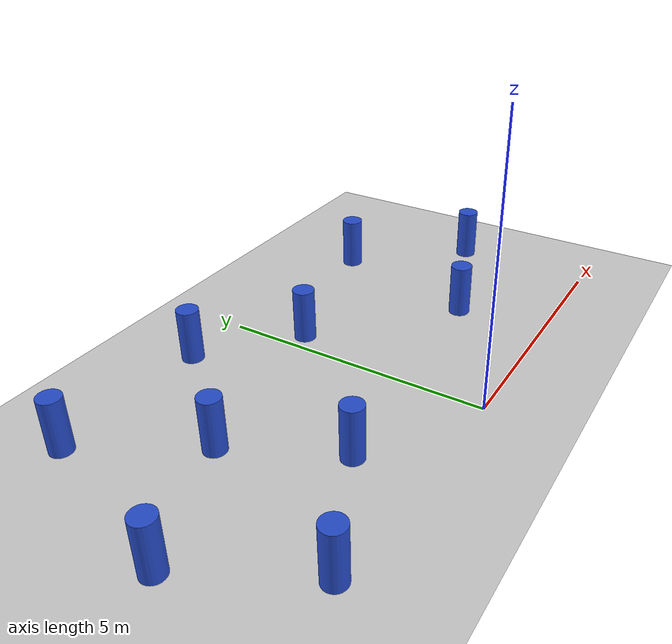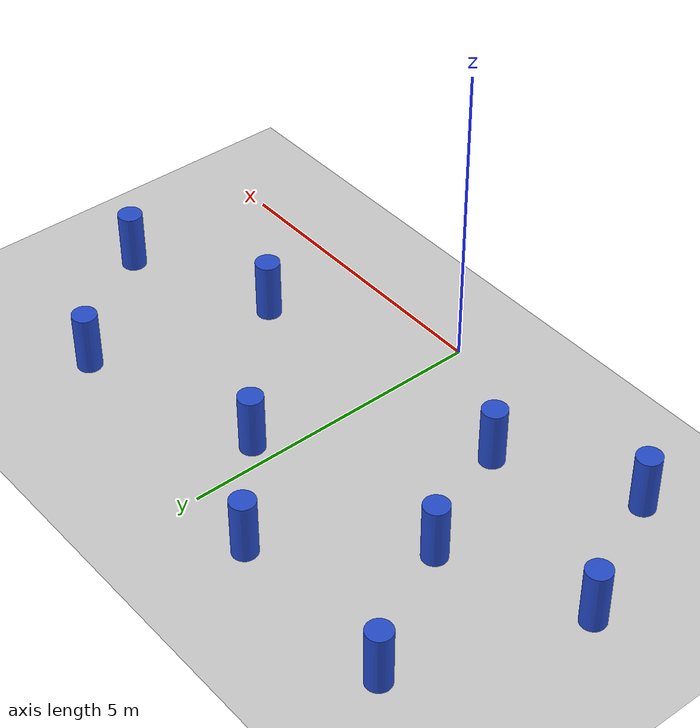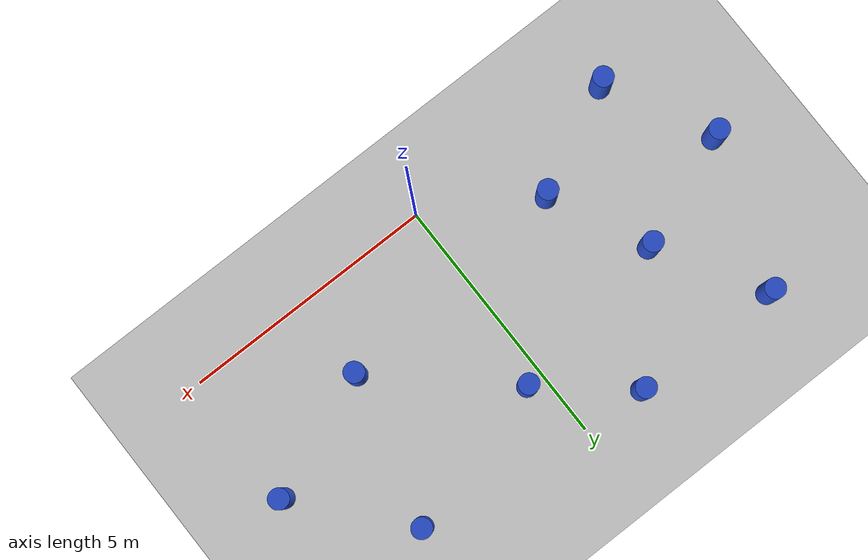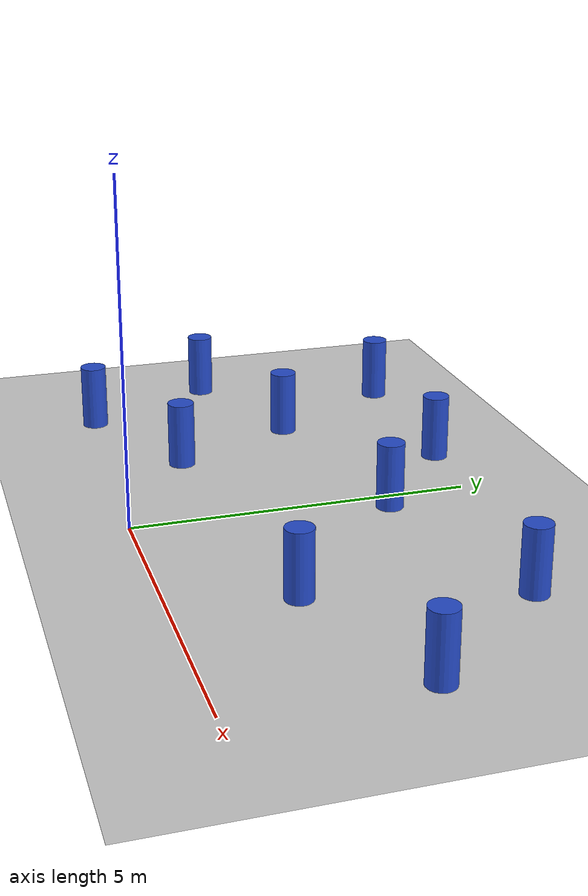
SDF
<sdf version="1.7">
 <world name="default">
  <model name="ground_plane">
   <static>1</static>
   <link name="link">
    <collision name="collision">
     <geometry><plane><normal>0 0 1</normal><size>100 100</size></plane></geometry>
     <surface>
      <contact><collide_bitmask>65535</collide_bitmask></contact>
      <friction><ode><mu>100</mu><mu2>50</mu2></ode></friction>
     </surface>
    </collision>
    <visual name="visual">
     <cast_shadows>0</cast_shadows>
     <geometry><plane><normal>0 0 1</normal><size>100 100</size></plane></geometry>
     <material>
      <script><uri>file://media/materials/scripts/gazebo.material</uri><name>Gazebo/Grey</name></script>
     </material>
    </visual>
   </link>
  </model>
  <model name="20x100cm_cylinder">
   <link name="link">
    <inertial>
     <mass>1</mass>
     <inertia><ixx>0.145833</ixx><ixy>0</ixy><ixz>0</ixz><iyy>0.145833</iyy><iyz>0</iyz><izz>0.125</izz></inertia>
    </inertial>
    <visual name="visual">
     <geometry><cylinder><radius>0.2</radius><length>1</length></cylinder></geometry>
     <material>
      <script><name>Gazebo/Blue</name><uri>file://media/materials/scripts/gazebo.material</uri></script>
      <shader type="pixel"><normal_map>__default__</normal_map></shader>
      <ambient>0.3 0.3 0.3 1</ambient>
      <diffuse>0.7 0.7 0.7 1</diffuse>
      <specular>0.01 0.01 0.01 1</specular>
      <emissive>0 0 0 1</emissive>
     </material>
    </visual>
    <collision name="collision">
     <geometry><cylinder><radius>0.2</radius><length>1</length></cylinder></geometry>
     <surface>
      <friction>
       <ode><mu>1</mu><mu2>1</mu2><fdir1>0 0 0</fdir1><slip1>0</slip1><slip2>0</slip2></ode>
       <torsional>
        <coefficient>1</coefficient>
        <patch_radius>0</patch_radius>
        <surface_radius>0</surface_radius>
        <use_patch_radius>1</use_patch_radius>
        <ode><slip>0</slip></ode>
       </torsional>
      </friction>
      <bounce><restitution_coefficient>0</restitution_coefficient><threshold>1e+06</threshold></bounce>
      <contact>
       <collide_without_contact>0</collide_without_contact>
       <collide_without_contact_bitmask>1</collide_without_contact_bitmask>
       <collide_bitmask>1</collide_bitmask>
       <ode>
        <soft_cfm>0</soft_cfm>
        <soft_erp>0.2</soft_erp>
        <kp>1e+13</kp>
        <kd>1</kd>
        <max_vel>0.01</max_vel>
        <min_depth>0</min_depth>
       </ode>
       <bullet>
        <split_impulse>1</split_impulse>
        <split_impulse_penetration_threshold>-0.01</split_impulse_penetration_threshold>
        <soft_cfm>0</soft_cfm>
        <soft_erp>0.2</soft_erp>
        <kp>1e+13</kp>
        <kd>1</kd>
       </bullet>
      </contact>
     </surface>
    </collision>
   </link>
   <static>0</static>
   <pose>-2.97051 3.11819 0.5 0 -0 0</pose>
  </model>
  <model name="20x100cm_cylinder_clone">
   <link name="link">
    <inertial>
     <mass>1</mass>
     <inertia><ixx>0.145833</ixx><ixy>0</ixy><ixz>0</ixz><iyy>0.145833</iyy><iyz>0</iyz><izz>0.125</izz></inertia>
    </inertial>
    <visual name="visual">
     <geometry><cylinder><radius>0.2</radius><length>1</length></cylinder></geometry>
     <material>
      <script><name>Gazebo/Blue</name><uri>file://media/materials/scripts/gazebo.material</uri></script>
      <shader type="pixel"><normal_map>__default__</normal_map></shader>
      <ambient>0.3 0.3 0.3 1</ambient>
      <diffuse>0.7 0.7 0.7 1</diffuse>
      <specular>0.01 0.01 0.01 1</specular>
      <emissive>0 0 0 1</emissive>
     </material>
    </visual>
    <collision name="collision">
     <geometry><cylinder><radius>0.2</radius><length>1</length></cylinder></geometry>
     <surface>
      <friction>
       <ode><mu>1</mu><mu2>1</mu2><fdir1>0 0 0</fdir1><slip1>0</slip1><slip2>0</slip2></ode>
       <torsional>
        <coefficient>1</coefficient>
        <patch_radius>0</patch_radius>
        <surface_radius>0</surface_radius>
        <use_patch_radius>1</use_patch_radius>
        <ode><slip>0</slip></ode>
       </torsional>
      </friction>
      <bounce><restitution_coefficient>0</restitution_coefficient><threshold>1e+06</threshold></bounce>
      <contact>
       <collide_without_contact>0</collide_without_contact>
       <collide_without_contact_bitmask>1</collide_without_contact_bitmask>
       <collide_bitmask>1</collide_bitmask>
       <ode>
        <soft_cfm>0</soft_cfm>
        <soft_erp>0.2</soft_erp>
        <kp>1e+13</kp>
        <kd>1</kd>
        <max_vel>0.01</max_vel>
        <min_depth>0</min_depth>
       </ode>
       <bullet>
        <split_impulse>1</split_impulse>
        <split_impulse_penetration_threshold>-0.01</split_impulse_penetration_threshold>
        <soft_cfm>0</soft_cfm>
        <soft_erp>0.2</soft_erp>
        <kp>1e+13</kp>
        <kd>1</kd>
       </bullet>
      </contact>
     </surface>
    </collision>
   </link>
   <static>0</static>
   <pose>2.65411 1.66507 0.5 0 -0 0</pose>
  </model>
  <model name="20x100cm_cylinder_clone_2">
   <link name="link">
    <inertial>
     <mass>1</mass>
     <inertia><ixx>0.145833</ixx><ixy>0</ixy><ixz>0</ixz><iyy>0.145833</iyy><iyz>0</iyz><izz>0.125</izz></inertia>
    </inertial>
    <visual name="visual">
     <geometry><cylinder><radius>0.2</radius><length>1</length></cylinder></geometry>
     <material>
      <script><name>Gazebo/Blue</name><uri>file://media/materials/scripts/gazebo.material</uri></script>
      <shader type="pixel"><normal_map>__default__</normal_map></shader>
      <ambient>0.3 0.3 0.3 1</ambient>
      <diffuse>0.7 0.7 0.7 1</diffuse>
      <specular>0.01 0.01 0.01 1</specular>
      <emissive>0 0 0 1</emissive>
     </material>
    </visual>
    <collision name="collision">
     <geometry><cylinder><radius>0.2</radius><length>1</length></cylinder></geometry>
     <surface>
      <friction>
       <ode><mu>1</mu><mu2>1</mu2><fdir1>0 0 0</fdir1><slip1>0</slip1><slip2>0</slip2></ode>
       <torsional>
        <coefficient>1</coefficient>
        <patch_radius>0</patch_radius>
        <surface_radius>0</surface_radius>
        <use_patch_radius>1</use_patch_radius>
        <ode><slip>0</slip></ode>
       </torsional>
      </friction>
      <bounce><restitution_coefficient>0</restitution_coefficient><threshold>1e+06</threshold></bounce>
      <contact>
       <collide_without_contact>0</collide_without_contact>
       <collide_without_contact_bitmask>1</collide_without_contact_bitmask>
       <collide_bitmask>1</collide_bitmask>
       <ode>
        <soft_cfm>0</soft_cfm>
        <soft_erp>0.2</soft_erp>
        <kp>1e+13</kp>
        <kd>1</kd>
        <max_vel>0.01</max_vel>
        <min_depth>0</min_depth>
       </ode>
       <bullet>
        <split_impulse>1</split_impulse>
        <split_impulse_penetration_threshold>-0.01</split_impulse_penetration_threshold>
        <soft_cfm>0</soft_cfm>
        <soft_erp>0.2</soft_erp>
        <kp>1e+13</kp>
        <kd>1</kd>
       </bullet>
      </contact>
     </surface>
    </collision>
   </link>
   <static>0</static>
   <pose>-4.13406 0.231543 0.5 0 -0 0</pose>
  </model>
  <model name="20x100cm_cylinder_clone_4">
   <link name="link">
    <inertial>
     <mass>1</mass>
     <inertia><ixx>0.145833</ixx><ixy>0</ixy><ixz>0</ixz><iyy>0.145833</iyy><iyz>0</iyz><izz>0.125</izz></inertia>
    </inertial>
    <visual name="visual">
     <geometry><cylinder><radius>0.2</radius><length>1</length></cylinder></geometry>
     <material>
      <script><name>Gazebo/Blue</name><uri>file://media/materials/scripts/gazebo.material</uri></script>
      <shader type="pixel"><normal_map>__default__</normal_map></shader>
      <ambient>0.3 0.3 0.3 1</ambient>
      <diffuse>0.7 0.7 0.7 1</diffuse>
      <specular>0.01 0.01 0.01 1</specular>
      <emissive>0 0 0 1</emissive>
     </material>
    </visual>
    <collision name="collision">
     <geometry><cylinder><radius>0.2</radius><length>1</length></cylinder></geometry>
     <surface>
      <friction>
       <ode><mu>1</mu><mu2>1</mu2><fdir1>0 0 0</fdir1><slip1>0</slip1><slip2>0</slip2></ode>
       <torsional>
        <coefficient>1</coefficient>
        <patch_radius>0</patch_radius>
        <surface_radius>0</surface_radius>
        <use_patch_radius>1</use_patch_radius>
        <ode><slip>0</slip></ode>
       </torsional>
      </friction>
      <bounce><restitution_coefficient>0</restitution_coefficient><threshold>1e+06</threshold></bounce>
      <contact>
       <collide_without_contact>0</collide_without_contact>
       <collide_without_contact_bitmask>1</collide_without_contact_bitmask>
       <collide_bitmask>1</collide_bitmask>
       <ode>
        <soft_cfm>0</soft_cfm>
        <soft_erp>0.2</soft_erp>
        <kp>1e+13</kp>
        <kd>1</kd>
        <max_vel>0.01</max_vel>
        <min_depth>0</min_depth>
       </ode>
       <bullet>
        <split_impulse>1</split_impulse>
        <split_impulse_penetration_threshold>-0.01</split_impulse_penetration_threshold>
        <soft_cfm>0</soft_cfm>
        <soft_erp>0.2</soft_erp>
        <kp>1e+13</kp>
        <kd>1</kd>
       </bullet>
      </contact>
     </surface>
    </collision>
   </link>
   <static>0</static>
   <pose>0.34899 3.73902 0.5 0 -0 0</pose>
  </model>
  <model name="20x100cm_cylinder_clone_7">
   <link name="link">
    <inertial>
     <mass>1</mass>
     <inertia><ixx>0.145833</ixx><ixy>0</ixy><ixz>0</ixz><iyy>0.145833</iyy><iyz>0</iyz><izz>0.125</izz></inertia>
    </inertial>
    <visual name="visual">
     <geometry><cylinder><radius>0.2</radius><length>1</length></cylinder></geometry>
     <material>
      <script><name>Gazebo/Blue</name><uri>file://media/materials/scripts/gazebo.material</uri></script>
      <shader type="pixel"><normal_map>__default__</normal_map></shader>
      <ambient>0.3 0.3 0.3 1</ambient>
      <diffuse>0.7 0.7 0.7 1</diffuse>
      <specular>0.01 0.01 0.01 1</specular>
      <emissive>0 0 0 1</emissive>
     </material>
    </visual>
    <collision name="collision">
     <geometry><cylinder><radius>0.2</radius><length>1</length></cylinder></geometry>
     <surface>
      <friction>
       <ode><mu>1</mu><mu2>1</mu2><fdir1>0 0 0</fdir1><slip1>0</slip1><slip2>0</slip2></ode>
       <torsional>
        <coefficient>1</coefficient>
        <patch_radius>0</patch_radius>
        <surface_radius>0</surface_radius>
        <use_patch_radius>1</use_patch_radius>
        <ode><slip>0</slip></ode>
       </torsional>
      </friction>
      <bounce><restitution_coefficient>0</restitution_coefficient><threshold>1e+06</threshold></bounce>
      <contact>
       <collide_without_contact>0</collide_without_contact>
       <collide_without_contact_bitmask>1</collide_without_contact_bitmask>
       <collide_bitmask>1</collide_bitmask>
       <ode>
        <soft_cfm>0</soft_cfm>
        <soft_erp>0.2</soft_erp>
        <kp>1e+13</kp>
        <kd>1</kd>
        <max_vel>0.01</max_vel>
        <min_depth>0</min_depth>
       </ode>
       <bullet>
        <split_impulse>1</split_impulse>
        <split_impulse_penetration_threshold>-0.01</split_impulse_penetration_threshold>
        <soft_cfm>0</soft_cfm>
        <soft_erp>0.2</soft_erp>
        <kp>1e+13</kp>
        <kd>1</kd>
       </bullet>
      </contact>
     </surface>
    </collision>
   </link>
   <static>0</static>
   <pose>3.39824 4.56379 0.5 0 -0 0</pose>
  </model>
  <model name="20x100cm_cylinder_clone_9">
   <link name="link">
    <inertial>
     <mass>1</mass>
     <inertia><ixx>0.145833</ixx><ixy>0</ixy><ixz>0</ixz><iyy>0.145833</iyy><iyz>0</iyz><izz>0.125</izz></inertia>
    </inertial>
    <visual name="visual">
     <geometry><cylinder><radius>0.2</radius><length>1</length></cylinder></geometry>
     <material>
      <script><name>Gazebo/Blue</name><uri>file://media/materials/scripts/gazebo.material</uri></script>
      <shader type="pixel"><normal_map>__default__</normal_map></shader>
      <ambient>0.3 0.3 0.3 1</ambient>
      <diffuse>0.7 0.7 0.7 1</diffuse>
      <specular>0.01 0.01 0.01 1</specular>
      <emissive>0 0 0 1</emissive>
     </material>
    </visual>
    <collision name="collision">
     <geometry><cylinder><radius>0.2</radius><length>1</length></cylinder></geometry>
     <surface>
      <friction>
       <ode><mu>1</mu><mu2>1</mu2><fdir1>0 0 0</fdir1><slip1>0</slip1><slip2>0</slip2></ode>
       <torsional>
        <coefficient>1</coefficient>
        <patch_radius>0</patch_radius>
        <surface_radius>0</surface_radius>
        <use_patch_radius>1</use_patch_radius>
        <ode><slip>0</slip></ode>
       </torsional>
      </friction>
      <bounce><restitution_coefficient>0</restitution_coefficient><threshold>1e+06</threshold></bounce>
      <contact>
       <collide_without_contact>0</collide_without_contact>
       <collide_without_contact_bitmask>1</collide_without_contact_bitmask>
       <collide_bitmask>1</collide_bitmask>
       <ode>
        <soft_cfm>0</soft_cfm>
        <soft_erp>0.2</soft_erp>
        <kp>1e+13</kp>
        <kd>1</kd>
        <max_vel>0.01</max_vel>
        <min_depth>0</min_depth>
       </ode>
       <bullet>
        <split_impulse>1</split_impulse>
        <split_impulse_penetration_threshold>-0.01</split_impulse_penetration_threshold>
        <soft_cfm>0</soft_cfm>
        <soft_erp>0.2</soft_erp>
        <kp>1e+13</kp>
        <kd>1</kd>
       </bullet>
      </contact>
     </surface>
    </collision>
   </link>
   <static>0</static>
   <pose>-4.15056 5.11495 0.5 0 -0 0</pose>
  </model>
  <model name="20x100cm_cylinder_clone_10">
   <link name="link">
    <inertial>
     <mass>1</mass>
     <inertia><ixx>0.145833</ixx><ixy>0</ixy><ixz>0</ixz><iyy>0.145833</iyy><iyz>0</iyz><izz>0.125</izz></inertia>
    </inertial>
    <visual name="visual">
     <geometry><cylinder><radius>0.2</radius><length>1</length></cylinder></geometry>
     <material>
      <script><name>Gazebo/Blue</name><uri>file://media/materials/scripts/gazebo.material</uri></script>
      <shader type="pixel"><normal_map>__default__</normal_map></shader>
      <ambient>0.3 0.3 0.3 1</ambient>
      <diffuse>0.7 0.7 0.7 1</diffuse>
      <specular>0.01 0.01 0.01 1</specular>
      <emissive>0 0 0 1</emissive>
     </material>
    </visual>
    <collision name="collision">
     <geometry><cylinder><radius>0.2</radius><length>1</length></cylinder></geometry>
     <surface>
      <friction>
       <ode><mu>1</mu><mu2>1</mu2><fdir1>0 0 0</fdir1><slip1>0</slip1><slip2>0</slip2></ode>
       <torsional>
        <coefficient>1</coefficient>
        <patch_radius>0</patch_radius>
        <surface_radius>0</surface_radius>
        <use_patch_radius>1</use_patch_radius>
        <ode><slip>0</slip></ode>
       </torsional>
      </friction>
      <bounce><restitution_coefficient>0</restitution_coefficient><threshold>1e+06</threshold></bounce>
      <contact>
       <collide_without_contact>0</collide_without_contact>
       <collide_without_contact_bitmask>1</collide_without_contact_bitmask>
       <collide_bitmask>1</collide_bitmask>
       <ode>
        <soft_cfm>0</soft_cfm>
        <soft_erp>0.2</soft_erp>
        <kp>1e+13</kp>
        <kd>1</kd>
        <max_vel>0.01</max_vel>
        <min_depth>0</min_depth>
       </ode>
       <bullet>
        <split_impulse>1</split_impulse>
        <split_impulse_penetration_threshold>-0.01</split_impulse_penetration_threshold>
        <soft_cfm>0</soft_cfm>
        <soft_erp>0.2</soft_erp>
        <kp>1e+13</kp>
        <kd>1</kd>
       </bullet>
      </contact>
     </surface>
    </collision>
   </link>
   <static>0</static>
   <pose>-5.17938 2.2645 0.5 0 -0 0</pose>
  </model>
  <model name="20x100cm_cylinder_clone_11">
   <link name="link">
    <inertial>
     <mass>1</mass>
     <inertia><ixx>0.145833</ixx><ixy>0</ixy><ixz>0</ixz><iyy>0.145833</iyy><iyz>0</iyz><izz>0.125</izz></inertia>
    </inertial>
    <visual name="visual">
     <geometry><cylinder><radius>0.2</radius><length>1</length></cylinder></geometry>
     <material>
      <script><name>Gazebo/Blue</name><uri>file://media/materials/scripts/gazebo.material</uri></script>
      <shader type="pixel"><normal_map>__default__</normal_map></shader>
      <ambient>0.3 0.3 0.3 1</ambient>
      <diffuse>0.7 0.7 0.7 1</diffuse>
      <specular>0.01 0.01 0.01 1</specular>
      <emissive>0 0 0 1</emissive>
     </material>
    </visual>
    <collision name="collision">
     <geometry><cylinder><radius>0.2</radius><length>1</length></cylinder></geometry>
     <surface>
      <friction>
       <ode><mu>1</mu><mu2>1</mu2><fdir1>0 0 0</fdir1><slip1>0</slip1><slip2>0</slip2></ode>
       <torsional>
        <coefficient>1</coefficient>
        <patch_radius>0</patch_radius>
        <surface_radius>0</surface_radius>
        <use_patch_radius>1</use_patch_radius>
        <ode><slip>0</slip></ode>
       </torsional>
      </friction>
      <bounce><restitution_coefficient>0</restitution_coefficient><threshold>1e+06</threshold></bounce>
      <contact>
       <collide_without_contact>0</collide_without_contact>
       <collide_without_contact_bitmask>1</collide_without_contact_bitmask>
       <collide_bitmask>1</collide_bitmask>
       <ode>
        <soft_cfm>0</soft_cfm>
        <soft_erp>0.2</soft_erp>
        <kp>1e+13</kp>
        <kd>1</kd>
        <max_vel>0.01</max_vel>
        <min_depth>0</min_depth>
       </ode>
       <bullet>
        <split_impulse>1</split_impulse>
        <split_impulse_penetration_threshold>-0.01</split_impulse_penetration_threshold>
        <soft_cfm>0</soft_cfm>
        <soft_erp>0.2</soft_erp>
        <kp>1e+13</kp>
        <kd>1</kd>
       </bullet>
      </contact>
     </surface>
    </collision>
   </link>
   <static>0</static>
   <pose>-2.07566 1.2262 0.5 0 -0 0</pose>
  </model>
  <model name="20x100cm_cylinder_clone_15">
   <link name="link">
    <inertial>
     <mass>1</mass>
     <inertia><ixx>0.145833</ixx><ixy>0</ixy><ixz>0</ixz><iyy>0.145833</iyy><iyz>0</iyz><izz>0.125</izz></inertia>
    </inertial>
    <visual name="visual">
     <geometry><cylinder><radius>0.2</radius><length>1</length></cylinder></geometry>
     <material>
      <script><name>Gazebo/Blue</name><uri>file://media/materials/scripts/gazebo.material</uri></script>
      <shader type="pixel"><normal_map>__default__</normal_map></shader>
      <ambient>0.3 0.3 0.3 1</ambient>
      <diffuse>0.7 0.7 0.7 1</diffuse>
      <specular>0.01 0.01 0.01 1</specular>
      <emissive>0 0 0 1</emissive>
     </material>
    </visual>
    <collision name="collision">
     <geometry><cylinder><radius>0.2</radius><length>1</length></cylinder></geometry>
     <surface>
      <friction>
       <ode><mu>1</mu><mu2>1</mu2><fdir1>0 0 0</fdir1><slip1>0</slip1><slip2>0</slip2></ode>
       <torsional>
        <coefficient>1</coefficient>
        <patch_radius>0</patch_radius>
        <surface_radius>0</surface_radius>
        <use_patch_radius>1</use_patch_radius>
        <ode><slip>0</slip></ode>
       </torsional>
      </friction>
      <bounce><restitution_coefficient>0</restitution_coefficient><threshold>1e+06</threshold></bounce>
      <contact>
       <collide_without_contact>0</collide_without_contact>
       <collide_without_contact_bitmask>1</collide_without_contact_bitmask>
       <collide_bitmask>1</collide_bitmask>
       <ode>
        <soft_cfm>0</soft_cfm>
        <soft_erp>0.2</soft_erp>
        <kp>1e+13</kp>
        <kd>1</kd>
        <max_vel>0.01</max_vel>
        <min_depth>0</min_depth>
       </ode>
       <bullet>
        <split_impulse>1</split_impulse>
        <split_impulse_penetration_threshold>-0.01</split_impulse_penetration_threshold>
        <soft_cfm>0</soft_cfm>
        <soft_erp>0.2</soft_erp>
        <kp>1e+13</kp>
        <kd>1</kd>
       </bullet>
      </contact>
     </surface>
    </collision>
   </link>
   <static>0</static>
   <pose>-1.2423 5.07239 0.5 0 -0 0</pose>
  </model>
  <model name="20x100cm_cylinder_clone_16">
   <link name="link">
    <inertial>
     <mass>1</mass>
     <inertia><ixx>0.145833</ixx><ixy>0</ixy><ixz>0</ixz><iyy>0.145833</iyy><iyz>0</iyz><izz>0.125</izz></inertia>
    </inertial>
    <visual name="visual">
     <geometry><cylinder><radius>0.2</radius><length>1</length></cylinder></geometry>
     <material>
      <script><name>Gazebo/Blue</name><uri>file://media/materials/scripts/gazebo.material</uri></script>
      <shader type="pixel"><normal_map>__default__</normal_map></shader>
      <ambient>0.3 0.3 0.3 1</ambient>
      <diffuse>0.7 0.7 0.7 1</diffuse>
      <specular>0.01 0.01 0.01 1</specular>
      <emissive>0 0 0 1</emissive>
     </material>
    </visual>
    <collision name="collision">
     <geometry><cylinder><radius>0.2</radius><length>1</length></cylinder></geometry>
     <surface>
      <friction>
       <ode><mu>1</mu><mu2>1</mu2><fdir1>0 0 0</fdir1><slip1>0</slip1><slip2>0</slip2></ode>
       <torsional>
        <coefficient>1</coefficient>
        <patch_radius>0</patch_radius>
        <surface_radius>0</surface_radius>
        <use_patch_radius>1</use_patch_radius>
        <ode><slip>0</slip></ode>
       </torsional>
      </friction>
      <bounce><restitution_coefficient>0</restitution_coefficient><threshold>1e+06</threshold></bounce>
      <contact>
       <collide_without_contact>0</collide_without_contact>
       <collide_without_contact_bitmask>1</collide_without_contact_bitmask>
       <collide_bitmask>1</collide_bitmask>
       <ode>
        <soft_cfm>0</soft_cfm>
        <soft_erp>0.2</soft_erp>
        <kp>1e+13</kp>
        <kd>1</kd>
        <max_vel>0.01</max_vel>
        <min_depth>0</min_depth>
       </ode>
       <bullet>
        <split_impulse>1</split_impulse>
        <split_impulse_penetration_threshold>-0.01</split_impulse_penetration_threshold>
        <soft_cfm>0</soft_cfm>
        <soft_erp>0.2</soft_erp>
        <kp>1e+13</kp>
        <kd>1</kd>
       </bullet>
      </contact>
     </surface>
    </collision>
   </link>
   <static>0</static>
   <pose>5.05936 2.60649 0.5 0 -0 0</pose>
  </model>
 </world>
</sdf>
